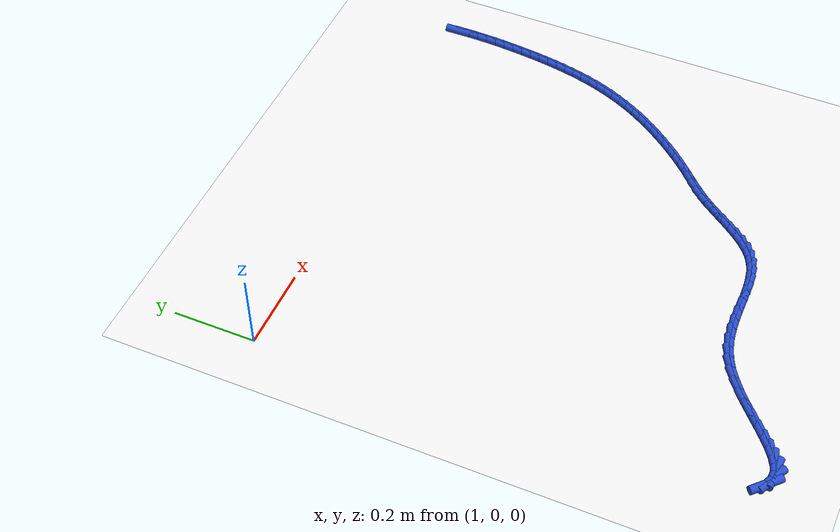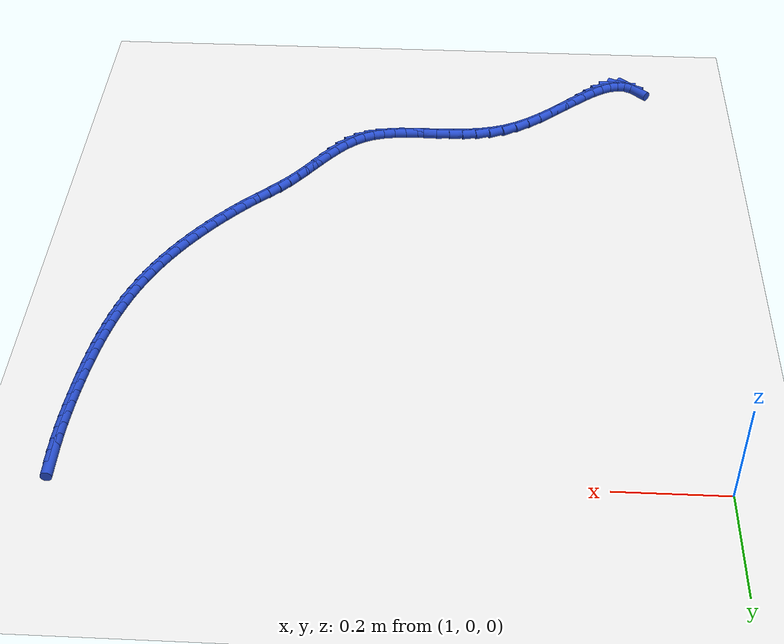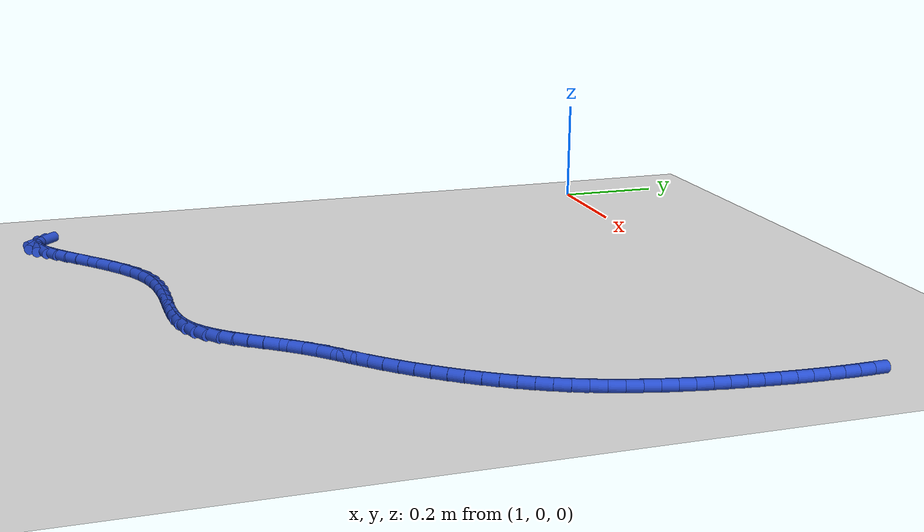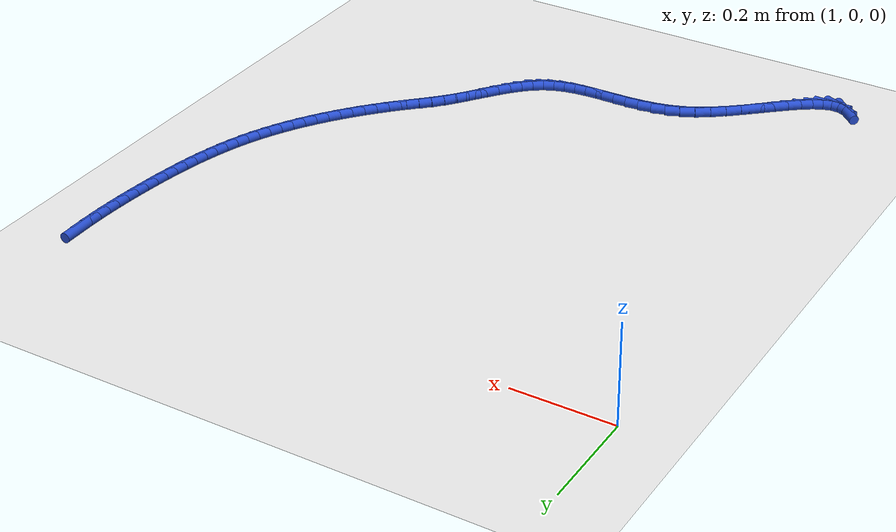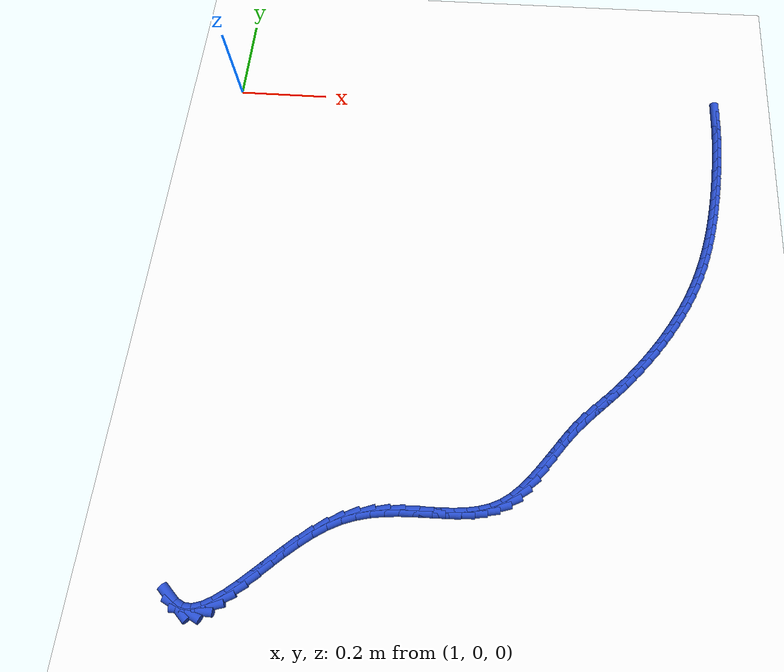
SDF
<sdf version="1.6">
 <world name="default">
  <model name="ground_plane">
   <static>1</static>
   <link name="link">
    <collision name="collision">
     <geometry><plane><normal>0 0 1</normal><size>100 100</size></plane></geometry>
     <surface><friction><ode><mu>100</mu><mu2>50</mu2></ode></friction></surface>
    </collision>
    <visual name="visual">
     <cast_shadows>0</cast_shadows>
     <geometry><plane><normal>0 0 1</normal><size>100 100</size></plane></geometry>
     <material>
      <script><uri>file://media/materials/scripts/gazebo.material</uri><name>Gazebo/WhiteGlow</name></script>
     </material>
    </visual>
   </link>
  </model>
  <model name="line">
   <link name="link_135">
    <pose>2.11978300396133 -0.015988288878978116 0.01 0 1.57 -1.5595857871801593</pose>
    <collision name="collision">
     <geometry><cylinder><radius>0.01</radius><length>0.08</length></cylinder></geometry>
    </collision>
    <visual name="visual">
     <material>
      <script><name>Gazebo/Blue</name><uri>file://media/materials/scripts/gazebo.material</uri></script>
     </material>
     <geometry><cylinder><radius>0.01</radius><length>0.08</length></cylinder></geometry>
    </visual>
   </link>
   <link name="link_136">
    <pose>2.120070036591148 -0.04159103550770684 0.01 0 1.57 1.5594886178373044</pose>
    <collision name="collision">
     <geometry><cylinder><radius>0.01</radius><length>0.08</length></cylinder></geometry>
    </collision>
    <visual name="visual">
     <material>
      <script><name>Gazebo/Blue</name><uri>file://media/materials/scripts/gazebo.material</uri></script>
     </material>
     <geometry><cylinder><radius>0.01</radius><length>0.08</length></cylinder></geometry>
    </visual>
   </link>
   <link name="link_137">
    <pose>2.1197798082160437 -0.06725635870798226 0.01 0 1.57 1.5386150962074354</pose>
    <collision name="collision">
     <geometry><cylinder><radius>0.01</radius><length>0.08</length></cylinder></geometry>
    </collision>
    <visual name="visual">
     <material>
      <script><name>Gazebo/Blue</name><uri>file://media/materials/scripts/gazebo.material</uri></script>
     </material>
     <geometry><cylinder><radius>0.01</radius><length>0.08</length></cylinder></geometry>
    </visual>
   </link>
   <link name="link_138">
    <pose>2.118952250402722 -0.09296302364339723 0.01 0 1.57 1.5193407405600523</pose>
    <collision name="collision">
     <geometry><cylinder><radius>0.01</radius><length>0.08</length></cylinder></geometry>
    </collision>
    <visual name="visual">
     <material>
      <script><name>Gazebo/Blue</name><uri>file://media/materials/scripts/gazebo.material</uri></script>
     </material>
     <geometry><cylinder><radius>0.01</radius><length>0.08</length></cylinder></geometry>
    </visual>
   </link>
   <link name="link_139">
    <pose>2.1176272947178885 -0.11868979547754147 0.01 0 1.57 1.5016210712404008</pose>
    <collision name="collision">
     <geometry><cylinder><radius>0.01</radius><length>0.08</length></cylinder></geometry>
    </collision>
    <visual name="visual">
     <material>
      <script><name>Gazebo/Blue</name><uri>file://media/materials/scripts/gazebo.material</uri></script>
     </material>
     <geometry><cylinder><radius>0.01</radius><length>0.08</length></cylinder></geometry>
    </visual>
   </link>
   <link name="link_140">
    <pose>2.1158448727282493 -0.14441543937400703 0.01 0 1.57 1.485413915579889</pose>
    <collision name="collision">
     <geometry><cylinder><radius>0.01</radius><length>0.08</length></cylinder></geometry>
    </collision>
    <visual name="visual">
     <material>
      <script><name>Gazebo/Blue</name><uri>file://media/materials/scripts/gazebo.material</uri></script>
     </material>
     <geometry><cylinder><radius>0.01</radius><length>0.08</length></cylinder></geometry>
    </visual>
   </link>
   <link name="link_141">
    <pose>2.1136449160005095 -0.17011872049638596 0.01 0 1.57 1.4706804253703891</pose>
    <collision name="collision">
     <geometry><cylinder><radius>0.01</radius><length>0.08</length></cylinder></geometry>
    </collision>
    <visual name="visual">
     <material>
      <script><name>Gazebo/Blue</name><uri>file://media/materials/scripts/gazebo.material</uri></script>
     </material>
     <geometry><cylinder><radius>0.01</radius><length>0.08</length></cylinder></geometry>
    </visual>
   </link>
   <link name="link_142">
    <pose>2.111067356101376 -0.19577840400826813 0.01 0 1.57 1.4567713460027756</pose>
    <collision name="collision">
     <geometry><cylinder><radius>0.01</radius><length>0.08</length></cylinder></geometry>
    </collision>
    <visual name="visual">
     <material>
      <script><name>Gazebo/Blue</name><uri>file://media/materials/scripts/gazebo.material</uri></script>
     </material>
     <geometry><cylinder><radius>0.01</radius><length>0.08</length></cylinder></geometry>
    </visual>
   </link>
   <link name="link_143">
    <pose>2.108136291109137 -0.221372366039773 0.01 0 1.57 1.4410204340914798</pose>
    <collision name="collision">
     <geometry><cylinder><radius>0.01</radius><length>0.08</length></cylinder></geometry>
    </collision>
    <visual name="visual">
     <material>
      <script><name>Gazebo/Blue</name><uri>file://media/materials/scripts/gazebo.material</uri></script>
     </material>
     <geometry><cylinder><radius>0.01</radius><length>0.08</length></cylinder></geometry>
    </visual>
   </link>
   <link name="link_144">
    <pose>2.104808000431936 -0.24687467477508174 0.01 0 1.57 1.4226833796528457</pose>
    <collision name="collision">
     <geometry><cylinder><radius>0.01</radius><length>0.08</length></cylinder></geometry>
    </collision>
    <visual name="visual">
     <material>
      <script><name>Gazebo/Blue</name><uri>file://media/materials/scripts/gazebo.material</uri></script>
     </material>
     <geometry><cylinder><radius>0.01</radius><length>0.08</length></cylinder></geometry>
    </visual>
   </link>
   <link name="link_145">
    <pose>2.101020609363415 -0.27225837906422756 0.01 0 1.57 1.4017176561535871</pose>
    <collision name="collision">
     <geometry><cylinder><radius>0.01</radius><length>0.08</length></cylinder></geometry>
    </collision>
    <visual name="visual">
     <material>
      <script><name>Gazebo/Blue</name><uri>file://media/materials/scripts/gazebo.material</uri></script>
     </material>
     <geometry><cylinder><radius>0.01</radius><length>0.08</length></cylinder></geometry>
    </visual>
   </link>
   <link name="link_146">
    <pose>2.0967122429961464 -0.2974965277459511 0.01 0 1.57 1.37808174743908</pose>
    <collision name="collision">
     <geometry><cylinder><radius>0.01</radius><length>0.08</length></cylinder></geometry>
    </collision>
    <visual name="visual">
     <material>
      <script><name>Gazebo/Blue</name><uri>file://media/materials/scripts/gazebo.material</uri></script>
     </material>
     <geometry><cylinder><radius>0.01</radius><length>0.08</length></cylinder></geometry>
    </visual>
   </link>
   <link name="link_147">
    <pose>2.091821026422706 -0.32256216965899587 0.01 0 1.57 1.3517394720048976</pose>
    <collision name="collision">
     <geometry><cylinder><radius>0.01</radius><length>0.08</length></cylinder></geometry>
    </collision>
    <visual name="visual">
     <material>
      <script><name>Gazebo/Blue</name><uri>file://media/materials/scripts/gazebo.material</uri></script>
     </material>
     <geometry><cylinder><radius>0.01</radius><length>0.08</length></cylinder></geometry>
    </visual>
   </link>
   <link name="link_148">
    <pose>2.0862850847356684 -0.34742835364210256 0.01 0 1.57 1.3226651286334323</pose>
    <collision name="collision">
     <geometry><cylinder><radius>0.01</radius><length>0.08</length></cylinder></geometry>
    </collision>
    <visual name="visual">
     <material>
      <script><name>Gazebo/Blue</name><uri>file://media/materials/scripts/gazebo.material</uri></script>
     </material>
     <geometry><cylinder><radius>0.01</radius><length>0.08</length></cylinder></geometry>
    </visual>
   </link>
   <link name="link_149">
    <pose>2.080042543027606 -0.3720681285340147 0.01 0 1.57 1.2908494423853714</pose>
    <collision name="collision">
     <geometry><cylinder><radius>0.01</radius><length>0.08</length></cylinder></geometry>
    </collision>
    <visual name="visual">
     <material>
      <script><name>Gazebo/Blue</name><uri>file://media/materials/scripts/gazebo.material</uri></script>
     </material>
     <geometry><cylinder><radius>0.01</radius><length>0.08</length></cylinder></geometry>
    </visual>
   </link>
   <link name="link_150">
    <pose>2.0730315263910954 -0.396454543173473 0.01 0 1.57 1.256306200707867</pose>
    <collision name="collision">
     <geometry><cylinder><radius>0.01</radius><length>0.08</length></cylinder></geometry>
    </collision>
    <visual name="visual">
     <material>
      <script><name>Gazebo/Blue</name><uri>file://media/materials/scripts/gazebo.material</uri></script>
     </material>
     <geometry><cylinder><radius>0.01</radius><length>0.08</length></cylinder></geometry>
    </visual>
   </link>
   <link name="link_151">
    <pose>2.0651901599187097 -0.4205606463992202 0.01 0 1.57 1.21907933543937</pose>
    <collision name="collision">
     <geometry><cylinder><radius>0.01</radius><length>0.08</length></cylinder></geometry>
    </collision>
    <visual name="visual">
     <material>
      <script><name>Gazebo/Blue</name><uri>file://media/materials/scripts/gazebo.material</uri></script>
     </material>
     <geometry><cylinder><radius>0.01</radius><length>0.08</length></cylinder></geometry>
    </visual>
   </link>
   <link name="link_152">
    <pose>2.056456568703023 -0.4443594870499993 0.01 0 1.57 1.1792909907006475</pose>
    <collision name="collision">
     <geometry><cylinder><radius>0.01</radius><length>0.08</length></cylinder></geometry>
    </collision>
    <visual name="visual">
     <material>
      <script><name>Gazebo/Blue</name><uri>file://media/materials/scripts/gazebo.material</uri></script>
     </material>
     <geometry><cylinder><radius>0.01</radius><length>0.08</length></cylinder></geometry>
    </visual>
   </link>
   <link name="link_153">
    <pose>2.0467699586954766 -0.46782422003682755 0.01 0 1.57 1.1388085865052286</pose>
    <collision name="collision">
     <geometry><cylinder><radius>0.01</radius><length>0.08</length></cylinder></geometry>
    </collision>
    <visual name="visual">
     <material>
      <script><name>Gazebo/Blue</name><uri>file://media/materials/scripts/gazebo.material</uri></script>
     </material>
     <geometry><cylinder><radius>0.01</radius><length>0.08</length></cylinder></geometry>
    </visual>
   </link>
   <link name="link_154">
    <pose>2.0361163277870613 -0.4909325922926119 0.01 0 1.57 1.1000331788736797</pose>
    <collision name="collision">
     <geometry><cylinder><radius>0.01</radius><length>0.08</length></cylinder></geometry>
    </collision>
    <visual name="visual">
     <material>
      <script><name>Gazebo/Blue</name><uri>file://media/materials/scripts/gazebo.material</uri></script>
     </material>
     <geometry><cylinder><radius>0.01</radius><length>0.08</length></cylinder></geometry>
    </visual>
   </link>
   <link name="link_155">
    <pose>2.024545373726295 -0.5136686020649635 0.01 0 1.57 1.063068602384058</pose>
    <collision name="collision">
     <geometry><cylinder><radius>0.01</radius><length>0.08</length></cylinder></geometry>
    </collision>
    <visual name="visual">
     <material>
      <script><name>Gazebo/Blue</name><uri>file://media/materials/scripts/gazebo.material</uri></script>
     </material>
     <geometry><cylinder><radius>0.01</radius><length>0.08</length></cylinder></geometry>
    </visual>
   </link>
   <link name="link_156">
    <pose>2.0121113578952157 -0.5360166954629277 0.01 0 1.57 1.0278327857150473</pose>
    <collision name="collision">
     <geometry><cylinder><radius>0.01</radius><length>0.08</length></cylinder></geometry>
    </collision>
    <visual name="visual">
     <material>
      <script><name>Gazebo/Blue</name><uri>file://media/materials/scripts/gazebo.material</uri></script>
     </material>
     <geometry><cylinder><radius>0.01</radius><length>0.08</length></cylinder></geometry>
    </visual>
   </link>
   <link name="link_157">
    <pose>1.9988685416758634 -0.5579613185955471 0.01 0 1.57 0.9942344580410488</pose>
    <collision name="collision">
     <geometry><cylinder><radius>0.01</radius><length>0.08</length></cylinder></geometry>
    </collision>
    <visual name="visual">
     <material>
      <script><name>Gazebo/Blue</name><uri>file://media/materials/scripts/gazebo.material</uri></script>
     </material>
     <geometry><cylinder><radius>0.01</radius><length>0.08</length></cylinder></geometry>
    </visual>
   </link>
   <link name="link_158">
    <pose>1.9848711864502773 -0.5794869175718668 0.01 0 1.57 0.9621762592313273</pose>
    <collision name="collision">
     <geometry><cylinder><radius>0.01</radius><length>0.08</length></cylinder></geometry>
    </collision>
    <visual name="visual">
     <material>
      <script><name>Gazebo/Blue</name><uri>file://media/materials/scripts/gazebo.material</uri></script>
     </material>
     <geometry><cylinder><radius>0.01</radius><length>0.08</length></cylinder></geometry>
    </visual>
   </link>
   <link name="link_159">
    <pose>1.9701735536004978 -0.6005779385009296 0.01 0 1.57 0.9315571986658844</pose>
    <collision name="collision">
     <geometry><cylinder><radius>0.01</radius><length>0.08</length></cylinder></geometry>
    </collision>
    <visual name="visual">
     <material>
      <script><name>Gazebo/Blue</name><uri>file://media/materials/scripts/gazebo.material</uri></script>
     </material>
     <geometry><cylinder><radius>0.01</radius><length>0.08</length></cylinder></geometry>
    </visual>
   </link>
   <link name="link_160">
    <pose>1.9548299045085635 -0.6212188274917798 0.01 0 1.57 0.9022745220785966</pose>
    <collision name="collision">
     <geometry><cylinder><radius>0.01</radius><length>0.08</length></cylinder></geometry>
    </collision>
    <visual name="visual">
     <material>
      <script><name>Gazebo/Blue</name><uri>file://media/materials/scripts/gazebo.material</uri></script>
     </material>
     <geometry><cylinder><radius>0.01</radius><length>0.08</length></cylinder></geometry>
    </visual>
   </link>
   <link name="link_161">
    <pose>1.9388945005565144 -0.6413940306534623 0.01 0 1.57 0.8742250573482563</pose>
    <collision name="collision">
     <geometry><cylinder><radius>0.01</radius><length>0.08</length></cylinder></geometry>
    </collision>
    <visual name="visual">
     <material>
      <script><name>Gazebo/Blue</name><uri>file://media/materials/scripts/gazebo.material</uri></script>
     </material>
     <geometry><cylinder><radius>0.01</radius><length>0.08</length></cylinder></geometry>
    </visual>
   </link>
   <link name="link_162">
    <pose>1.9224216031263903 -0.6610879940950196 0.01 0 1.57 0.8473061113066565</pose>
    <collision name="collision">
     <geometry><cylinder><radius>0.01</radius><length>0.08</length></cylinder></geometry>
    </collision>
    <visual name="visual">
     <material>
      <script><name>Gazebo/Blue</name><uri>file://media/materials/scripts/gazebo.material</uri></script>
     </material>
     <geometry><cylinder><radius>0.01</radius><length>0.08</length></cylinder></geometry>
    </visual>
   </link>
   <link name="link_163">
    <pose>1.9054654736002299 -0.6802851639254969 0.01 0 1.57 0.821415984096471</pose>
    <collision name="collision">
     <geometry><cylinder><radius>0.01</radius><length>0.08</length></cylinder></geometry>
    </collision>
    <visual name="visual">
     <material>
      <script><name>Gazebo/Blue</name><uri>file://media/materials/scripts/gazebo.material</uri></script>
     </material>
     <geometry><cylinder><radius>0.01</radius><length>0.08</length></cylinder></geometry>
    </visual>
   </link>
   <link name="link_164">
    <pose>1.888080373360074 -0.6989699862539368 0.01 0 1.57 0.7964541581187424</pose>
    <collision name="collision">
     <geometry><cylinder><radius>0.01</radius><length>0.08</length></cylinder></geometry>
    </collision>
    <visual name="visual">
     <material>
      <script><name>Gazebo/Blue</name><uri>file://media/materials/scripts/gazebo.material</uri></script>
     </material>
     <geometry><cylinder><radius>0.01</radius><length>0.08</length></cylinder></geometry>
    </visual>
   </link>
   <link name="link_165">
    <pose>1.8703205637879607 -0.7171269071893847 0.01 0 1.57 0.774471254251051</pose>
    <collision name="collision">
     <geometry><cylinder><radius>0.01</radius><length>0.08</length></cylinder></geometry>
    </collision>
    <visual name="visual">
     <material>
      <script><name>Gazebo/Blue</name><uri>file://media/materials/scripts/gazebo.material</uri></script>
     </material>
     <geometry><cylinder><radius>0.01</radius><length>0.08</length></cylinder></geometry>
    </visual>
   </link>
   <link name="link_166">
    <pose>1.8522629378850446 -0.7347941551049973 0.01 0 1.57 0.7700606278199875</pose>
    <collision name="collision">
     <geometry><cylinder><radius>0.01</radius><length>0.08</length></cylinder></geometry>
    </collision>
    <visual name="visual">
     <material>
      <script><name>Gazebo/Blue</name><uri>file://media/materials/scripts/gazebo.material</uri></script>
     </material>
     <geometry><cylinder><radius>0.01</radius><length>0.08</length></cylinder></geometry>
    </visual>
   </link>
   <link name="link_167">
    <pose>1.834136942646469 -0.7523724909508248 0.01 0 1.57 0.7892386843930539</pose>
    <collision name="collision">
     <geometry><cylinder><radius>0.01</radius><length>0.08</length></cylinder></geometry>
    </collision>
    <visual name="visual">
     <material>
      <script><name>Gazebo/Blue</name><uri>file://media/materials/scripts/gazebo.material</uri></script>
     </material>
     <geometry><cylinder><radius>0.01</radius><length>0.08</length></cylinder></geometry>
    </visual>
   </link>
   <link name="link_168">
    <pose>1.8162350411703603 -0.7704124284929635 0.01 0 1.57 0.8311260472584993</pose>
    <collision name="collision">
     <geometry><cylinder><radius>0.01</radius><length>0.08</length></cylinder></geometry>
    </collision>
    <visual name="visual">
     <material>
      <script><name>Gazebo/Blue</name><uri>file://media/materials/scripts/gazebo.material</uri></script>
     </material>
     <geometry><cylinder><radius>0.01</radius><length>0.08</length></cylinder></geometry>
    </visual>
   </link>
   <link name="link_169">
    <pose>1.798849895452214 -0.789464954164325 0.01 0 1.57 0.8858757075529334</pose>
    <collision name="collision">
     <geometry><cylinder><radius>0.01</radius><length>0.08</length></cylinder></geometry>
    </collision>
    <visual name="visual">
     <material>
      <script><name>Gazebo/Blue</name><uri>file://media/materials/scripts/gazebo.material</uri></script>
     </material>
     <geometry><cylinder><radius>0.01</radius><length>0.08</length></cylinder></geometry>
    </visual>
   </link>
   <link name="link_170">
    <pose>1.7821758658999967 -0.8098779923635463 0.01 0 1.57 0.9223235853843588</pose>
    <collision name="collision">
     <geometry><cylinder><radius>0.01</radius><length>0.08</length></cylinder></geometry>
    </collision>
    <visual name="visual">
     <material>
      <script><name>Gazebo/Blue</name><uri>file://media/materials/scripts/gazebo.material</uri></script>
     </material>
     <geometry><cylinder><radius>0.01</radius><length>0.08</length></cylinder></geometry>
    </visual>
   </link>
   <link name="link_171">
    <pose>1.766019440798592 -0.8311982382891164 0.01 0 1.57 0.9348850198530542</pose>
    <collision name="collision">
     <geometry><cylinder><radius>0.01</radius><length>0.08</length></cylinder></geometry>
    </collision>
    <visual name="visual">
     <material>
      <script><name>Gazebo/Blue</name><uri>file://media/materials/scripts/gazebo.material</uri></script>
     </material>
     <geometry><cylinder><radius>0.01</radius><length>0.08</length></cylinder></geometry>
    </visual>
   </link>
   <link name="link_172">
    <pose>1.7500914559170129 -0.8527747973045713 0.01 0 1.57 0.9242136788408318</pose>
    <collision name="collision">
     <geometry><cylinder><radius>0.01</radius><length>0.08</length></cylinder></geometry>
    </collision>
    <visual name="visual">
     <material>
      <script><name>Gazebo/Blue</name><uri>file://media/materials/scripts/gazebo.material</uri></script>
     </material>
     <geometry><cylinder><radius>0.01</radius><length>0.08</length></cylinder></geometry>
    </visual>
   </link>
   <link name="link_173">
    <pose>1.7341027470242731 -0.8739567747734436 0.01 0 1.57 0.8891475085409725</pose>
    <collision name="collision">
     <geometry><cylinder><radius>0.01</radius><length>0.08</length></cylinder></geometry>
    </collision>
    <visual name="visual">
     <material>
      <script><name>Gazebo/Blue</name><uri>file://media/materials/scripts/gazebo.material</uri></script>
     </material>
     <geometry><cylinder><radius>0.01</radius><length>0.08</length></cylinder></geometry>
    </visual>
   </link>
   <link name="link_174">
    <pose>1.717764149889386 -0.8940932760592701 0.01 0 1.57 0.8266669979324305</pose>
    <collision name="collision">
     <geometry><cylinder><radius>0.01</radius><length>0.08</length></cylinder></geometry>
    </collision>
    <visual name="visual">
     <material>
      <script><name>Gazebo/Blue</name><uri>file://media/materials/scripts/gazebo.material</uri></script>
     </material>
     <geometry><cylinder><radius>0.01</radius><length>0.08</length></cylinder></geometry>
    </visual>
   </link>
   <link name="link_175">
    <pose>1.700786500281366 -0.9125334065255843 0.01 0 1.57 0.7321230656267759</pose>
    <collision name="collision">
     <geometry><cylinder><radius>0.01</radius><length>0.08</length></cylinder></geometry>
    </collision>
    <visual name="visual">
     <material>
      <script><name>Gazebo/Blue</name><uri>file://media/materials/scripts/gazebo.material</uri></script>
     </material>
     <geometry><cylinder><radius>0.01</radius><length>0.08</length></cylinder></geometry>
    </visual>
   </link>
   <link name="link_176">
    <pose>1.682880633969226 -0.9286262715359221 0.01 0 1.57 0.6004197584648772</pose>
    <collision name="collision">
     <geometry><cylinder><radius>0.01</radius><length>0.08</length></cylinder></geometry>
    </collision>
    <visual name="visual">
     <material>
      <script><name>Gazebo/Blue</name><uri>file://media/materials/scripts/gazebo.material</uri></script>
     </material>
     <geometry><cylinder><radius>0.01</radius><length>0.08</length></cylinder></geometry>
    </visual>
   </link>
   <link name="link_177">
    <pose>1.6637573867219797 -0.9417209764538174 0.01 0 1.57 0.43814827442830956</pose>
    <collision name="collision">
     <geometry><cylinder><radius>0.01</radius><length>0.08</length></cylinder></geometry>
    </collision>
    <visual name="visual">
     <material>
      <script><name>Gazebo/Blue</name><uri>file://media/materials/scripts/gazebo.material</uri></script>
     </material>
     <geometry><cylinder><radius>0.01</radius><length>0.08</length></cylinder></geometry>
    </visual>
   </link>
   <link name="link_178">
    <pose>1.6431951617829428 -0.9513547975571347 0.01 0 1.57 0.2903279929768716</pose>
    <collision name="collision">
     <geometry><cylinder><radius>0.01</radius><length>0.08</length></cylinder></geometry>
    </collision>
    <visual name="visual">
     <material>
      <script><name>Gazebo/Blue</name><uri>file://media/materials/scripts/gazebo.material</uri></script>
     </material>
     <geometry><cylinder><radius>0.01</radius><length>0.08</length></cylinder></geometry>
    </visual>
   </link>
   <link name="link_179">
    <pose>1.6212737184544457 -0.9579042676705902 0.01 0 1.57 0.17450799278219906</pose>
    <collision name="collision">
     <geometry><cylinder><radius>0.01</radius><length>0.08</length></cylinder></geometry>
    </collision>
    <visual name="visual">
     <material>
      <script><name>Gazebo/Blue</name><uri>file://media/materials/scripts/gazebo.material</uri></script>
     </material>
     <geometry><cylinder><radius>0.01</radius><length>0.08</length></cylinder></geometry>
    </visual>
   </link>
   <link name="link_180">
    <pose>1.5981568001592872 -0.9619798097990735 0.01 0 1.57 0.09134637062734838</pose>
    <collision name="collision">
     <geometry><cylinder><radius>0.01</radius><length>0.08</length></cylinder></geometry>
    </collision>
    <visual name="visual">
     <material>
      <script><name>Gazebo/Blue</name><uri>file://media/materials/scripts/gazebo.material</uri></script>
     </material>
     <geometry><cylinder><radius>0.01</radius><length>0.08</length></cylinder></geometry>
    </visual>
   </link>
   <link name="link_181">
    <pose>1.5740081539198114 -0.9641918569719539 0.01 0 1.57 0.03831515394818295</pose>
    <collision name="collision">
     <geometry><cylinder><radius>0.01</radius><length>0.08</length></cylinder></geometry>
    </collision>
    <visual name="visual">
     <material>
      <script><name>Gazebo/Blue</name><uri>file://media/materials/scripts/gazebo.material</uri></script>
     </material>
     <geometry><cylinder><radius>0.01</radius><length>0.08</length></cylinder></geometry>
    </visual>
   </link>
   <link name="link_182">
    <pose>1.5489915267583585 -0.9651508422186013 0.01 0 1.57 0.012298981657838017</pose>
    <collision name="collision">
     <geometry><cylinder><radius>0.01</radius><length>0.08</length></cylinder></geometry>
    </collision>
    <visual name="visual">
     <material>
      <script><name>Gazebo/Blue</name><uri>file://media/materials/scripts/gazebo.material</uri></script>
     </material>
     <geometry><cylinder><radius>0.01</radius><length>0.08</length></cylinder></geometry>
    </visual>
   </link>
   <link name="link_183">
    <pose>1.5232706656972703 -0.9654671985683854 0.01 0 1.57 0.010820061240914024</pose>
    <collision name="collision">
     <geometry><cylinder><radius>0.01</radius><length>0.08</length></cylinder></geometry>
    </collision>
    <visual name="visual">
     <material>
      <script><name>Gazebo/Blue</name><uri>file://media/materials/scripts/gazebo.material</uri></script>
     </material>
     <geometry><cylinder><radius>0.01</radius><length>0.08</length></cylinder></geometry>
    </visual>
   </link>
   <link name="link_184">
    <pose>1.4970093177588903 -0.9657513590506762 0.01 0 1.57 0.03236330410881615</pose>
    <collision name="collision">
     <geometry><cylinder><radius>0.01</radius><length>0.08</length></cylinder></geometry>
    </collision>
    <visual name="visual">
     <material>
      <script><name>Gazebo/Blue</name><uri>file://media/materials/scripts/gazebo.material</uri></script>
     </material>
     <geometry><cylinder><radius>0.01</radius><length>0.08</length></cylinder></geometry>
    </visual>
   </link>
   <link name="link_185">
    <pose>1.4703712299655574 -0.9666137566948423 0.01 0 1.57 0.07623873636038499</pose>
    <collision name="collision">
     <geometry><cylinder><radius>0.01</radius><length>0.08</length></cylinder></geometry>
    </collision>
    <visual name="visual">
     <material>
      <script><name>Gazebo/Blue</name><uri>file://media/materials/scripts/gazebo.material</uri></script>
     </material>
     <geometry><cylinder><radius>0.01</radius><length>0.08</length></cylinder></geometry>
    </visual>
   </link>
   <link name="link_186">
    <pose>1.443520149339617 -0.9686648245302546 0.01 0 1.57 0.1421617972768413</pose>
    <collision name="collision">
     <geometry><cylinder><radius>0.01</radius><length>0.08</length></cylinder></geometry>
    </collision>
    <visual name="visual">
     <material>
      <script><name>Gazebo/Blue</name><uri>file://media/materials/scripts/gazebo.material</uri></script>
     </material>
     <geometry><cylinder><radius>0.01</radius><length>0.08</length></cylinder></geometry>
    </visual>
   </link>
   <link name="link_187">
    <pose>1.4166198229034075 -0.9725149955862817 0.01 0 1.57 0.22957468180121102</pose>
    <collision name="collision">
     <geometry><cylinder><radius>0.01</radius><length>0.08</length></cylinder></geometry>
    </collision>
    <visual name="visual">
     <material>
      <script><name>Gazebo/Blue</name><uri>file://media/materials/scripts/gazebo.material</uri></script>
     </material>
     <geometry><cylinder><radius>0.01</radius><length>0.08</length></cylinder></geometry>
    </visual>
   </link>
   <link name="link_188">
    <pose>1.389833997679273 -0.978774702892294 0.01 0 1.57 0.3367428619814023</pose>
    <collision name="collision">
     <geometry><cylinder><radius>0.01</radius><length>0.08</length></cylinder></geometry>
    </collision>
    <visual name="visual">
     <material>
      <script><name>Gazebo/Blue</name><uri>file://media/materials/scripts/gazebo.material</uri></script>
     </material>
     <geometry><cylinder><radius>0.01</radius><length>0.08</length></cylinder></geometry>
    </visual>
   </link>
   <link name="link_189">
    <pose>1.3633264206895541 -0.9880543794776611 0.01 0 1.57 0.45835516349871525</pose>
    <collision name="collision">
     <geometry><cylinder><radius>0.01</radius><length>0.08</length></cylinder></geometry>
    </collision>
    <visual name="visual">
     <material>
      <script><name>Gazebo/Blue</name><uri>file://media/materials/scripts/gazebo.material</uri></script>
     </material>
     <geometry><cylinder><radius>0.01</radius><length>0.08</length></cylinder></geometry>
    </visual>
   </link>
   <link name="link_190">
    <pose>1.337257504098588 -1.0009168309351346 0.01 0 1.57 0.565741785957707</pose>
    <collision name="collision">
     <geometry><cylinder><radius>0.01</radius><length>0.08</length></cylinder></geometry>
    </collision>
    <visual name="visual">
     <material>
      <script><name>Gazebo/Blue</name><uri>file://media/materials/scripts/gazebo.material</uri></script>
     </material>
     <geometry><cylinder><radius>0.01</radius><length>0.08</length></cylinder></geometry>
    </visual>
   </link>
   <link name="link_191">
    <pose>1.311731664919642 -1.0171251569918458 0.01 0 1.57 0.6424805062060539</pose>
    <collision name="collision">
     <geometry><cylinder><radius>0.01</radius><length>0.08</length></cylinder></geometry>
    </collision>
    <visual name="visual">
     <material>
      <script><name>Gazebo/Blue</name><uri>file://media/materials/scripts/gazebo.material</uri></script>
     </material>
     <geometry><cylinder><radius>0.01</radius><length>0.08</length></cylinder></geometry>
    </visual>
   </link>
   <link name="link_192">
    <pose>1.2868068677445985 -1.0357790378975196 0.01 0 1.57 0.6936765531626707</pose>
    <collision name="collision">
     <geometry><cylinder><radius>0.01</radius><length>0.08</length></cylinder></geometry>
    </collision>
    <visual name="visual">
     <material>
      <script><name>Gazebo/Blue</name><uri>file://media/materials/scripts/gazebo.material</uri></script>
     </material>
     <geometry><cylinder><radius>0.01</radius><length>0.08</length></cylinder></geometry>
    </visual>
   </link>
   <link name="link_193">
    <pose>1.2625396717624584 -1.0559580823617072 0.01 0 1.57 0.723020566741105</pose>
    <collision name="collision">
     <geometry><cylinder><radius>0.01</radius><length>0.08</length></cylinder></geometry>
    </collision>
    <visual name="visual">
     <material>
      <script><name>Gazebo/Blue</name><uri>file://media/materials/scripts/gazebo.material</uri></script>
     </material>
     <geometry><cylinder><radius>0.01</radius><length>0.08</length></cylinder></geometry>
    </visual>
   </link>
   <link name="link_194">
    <pose>1.2389866361622244 -1.0767418990939617 0.01 0 1.57 0.7319441432876466</pose>
    <collision name="collision">
     <geometry><cylinder><radius>0.01</radius><length>0.08</length></cylinder></geometry>
    </collision>
    <visual name="visual">
     <material>
      <script><name>Gazebo/Blue</name><uri>file://media/materials/scripts/gazebo.material</uri></script>
     </material>
     <geometry><cylinder><radius>0.01</radius><length>0.08</length></cylinder></geometry>
    </visual>
   </link>
   <link name="link_195">
    <pose>1.2162043201329005 -1.097210096803833 0.01 0 1.57 0.7193851313127918</pose>
    <collision name="collision">
     <geometry><cylinder><radius>0.01</radius><length>0.08</length></cylinder></geometry>
    </collision>
    <visual name="visual">
     <material>
      <script><name>Gazebo/Blue</name><uri>file://media/materials/scripts/gazebo.material</uri></script>
     </material>
     <geometry><cylinder><radius>0.01</radius><length>0.08</length></cylinder></geometry>
    </visual>
   </link>
   <link name="link_196">
    <pose>1.1942492828634887 -1.116442284200874 0.01 0 1.57 0.6810413143842913</pose>
    <collision name="collision">
     <geometry><cylinder><radius>0.01</radius><length>0.08</length></cylinder></geometry>
    </collision>
    <visual name="visual">
     <material>
      <script><name>Gazebo/Blue</name><uri>file://media/materials/scripts/gazebo.material</uri></script>
     </material>
     <geometry><cylinder><radius>0.01</radius><length>0.08</length></cylinder></geometry>
    </visual>
   </link>
   <link name="link_197">
    <pose>1.1731780835429928 -1.1335180699946354 0.01 0 1.57 0.6076331467495975</pose>
    <collision name="collision">
     <geometry><cylinder><radius>0.01</radius><length>0.08</length></cylinder></geometry>
    </collision>
    <visual name="visual">
     <material>
      <script><name>Gazebo/Blue</name><uri>file://media/materials/scripts/gazebo.material</uri></script>
     </material>
     <geometry><cylinder><radius>0.01</radius><length>0.08</length></cylinder></geometry>
    </visual>
   </link>
   <link name="link_198">
    <pose>1.1530472813604147 -1.1475170628946698 0.01 0 1.57 0.48166473062434406</pose>
    <collision name="collision">
     <geometry><cylinder><radius>0.01</radius><length>0.08</length></cylinder></geometry>
    </collision>
    <visual name="visual">
     <material>
      <script><name>Gazebo/Blue</name><uri>file://media/materials/scripts/gazebo.material</uri></script>
     </material>
     <geometry><cylinder><radius>0.01</radius><length>0.08</length></cylinder></geometry>
    </visual>
   </link>
   <link name="link_199">
    <pose>1.1339134355047573 -1.1575188716105278 0.01 0 1.57 0.27412338885020204</pose>
    <collision name="collision">
     <geometry><cylinder><radius>0.01</radius><length>0.08</length></cylinder></geometry>
    </collision>
    <visual name="visual">
     <material>
      <script><name>Gazebo/Blue</name><uri>file://media/materials/scripts/gazebo.material</uri></script>
     </material>
     <geometry><cylinder><radius>0.01</radius><length>0.08</length></cylinder></geometry>
    </visual>
   </link>
   <link name="link_200">
    <pose>1.1158331051650239 -1.162603104851762 0.01 0 1.57 -0.04438580645261102</pose>
    <collision name="collision">
     <geometry><cylinder><radius>0.01</radius><length>0.08</length></cylinder></geometry>
    </collision>
    <visual name="visual">
     <material>
      <script><name>Gazebo/Blue</name><uri>file://media/materials/scripts/gazebo.material</uri></script>
     </material>
     <geometry><cylinder><radius>0.01</radius><length>0.08</length></cylinder></geometry>
    </visual>
   </link>
   <link name="link_201">
    <pose>1.0988628495302173 -1.1618493713279232 0.01 0 1.57 -0.44273083431193216</pose>
    <collision name="collision">
     <geometry><cylinder><radius>0.01</radius><length>0.08</length></cylinder></geometry>
    </collision>
    <visual name="visual">
     <material>
      <script><name>Gazebo/Blue</name><uri>file://media/materials/scripts/gazebo.material</uri></script>
     </material>
     <geometry><cylinder><radius>0.01</radius><length>0.08</length></cylinder></geometry>
    </visual>
   </link>
   <link name="link_202">
    <pose>1.0830558529153682 -1.1543549436937652 0.01 0 1.57 -0.7639251524245595</pose>
    <collision name="collision">
     <geometry><cylinder><radius>0.01</radius><length>0.08</length></cylinder></geometry>
    </collision>
    <visual name="visual">
     <material>
      <script><name>Gazebo/Blue</name><uri>file://media/materials/scripts/gazebo.material</uri></script>
     </material>
     <geometry><cylinder><radius>0.01</radius><length>0.08</length></cylinder></geometry>
    </visual>
   </link>
  </model>
 </world>
</sdf>
